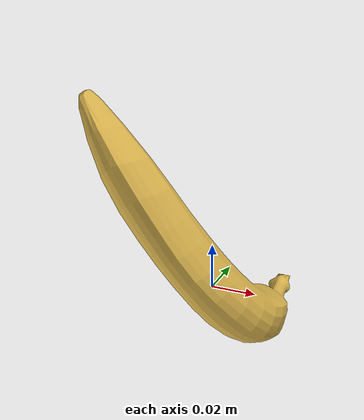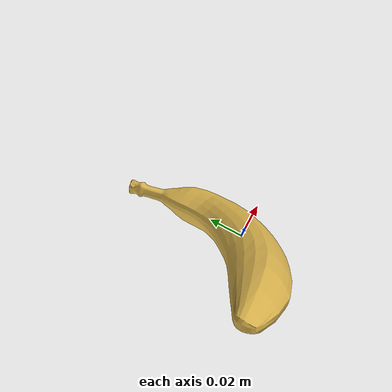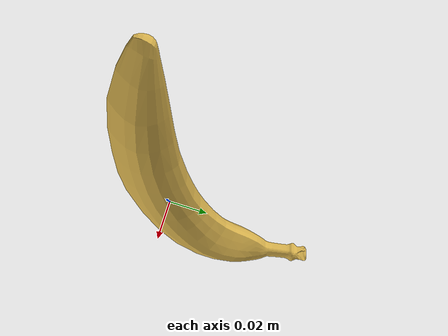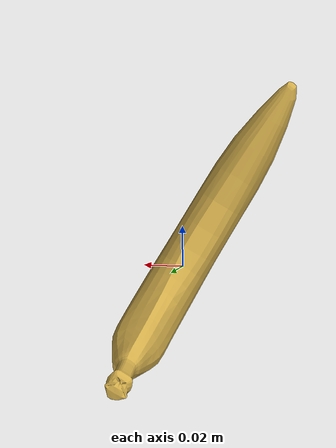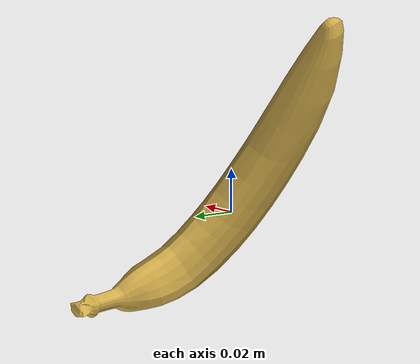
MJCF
<mujoco model="obj_banana">
    <asset>
        <!-- 视觉网格 -->
        <mesh file="../mesh/obj_banana/visual/banana.obj" name="banana_visual" scale="1.2 1.2 1.2" refquat="0.7071067811865472 0.0 0.0 0.7071067811865476" />

        <!-- 碰撞网格 -->
        <mesh file="../mesh/obj_banana/collision/obj_banana0.obj" name="banana_collision_0" scale="1.2 1.2 1.2" refquat="0.7071067811865472 0.0 0.0 0.7071067811865476" />
        <mesh file="../mesh/obj_banana/collision/obj_banana1.obj" name="banana_collision_1" scale="1.2 1.2 1.2" refquat="0.7071067811865472 0.0 0.0 0.7071067811865476" />
        <mesh file="../mesh/obj_banana/collision/obj_banana2.obj" name="banana_collision_2" scale="1.2 1.2 1.2" refquat="0.7071067811865472 0.0 0.0 0.7071067811865476" />

        <!-- 材质定义 -->
        <material name="banana_mat" rgba="0.85 0.7 0.3 1" specular="0.5" shininess="0.5" />
    </asset>

    <worldbody>
        <body name="banana_obj" pos="0 0 0" euler="0 0 0">
            <freejoint />
            <body name="object_banana" pos="0 0 0" euler="0 0 0">
                <!-- 视觉几何体 -->
                <geom solimp="0.998 0.998 0.001" solref="0.001 1" density="100" friction="0.95 0.3 0.1"
                      type="mesh" mesh="banana_visual" conaffinity="0" contype="0" group="2" material="banana_mat" />

                <!-- 碰撞几何体 -->
                <geom solimp="0.998 0.998 0.001" solref="0.001 1" density="100" friction="0.95 0.3 0.1"
                      type="mesh" mesh="banana_collision_0" group="3" rgba="0.8 0.8 0.8 0.0" />
                <geom solimp="0.998 0.998 0.001" solref="0.001 1" density="100" friction="0.95 0.3 0.1"
                      type="mesh" mesh="banana_collision_1" group="3" rgba="0.8 0.8 0.8 0.0" />
                <geom solimp="0.998 0.998 0.001" solref="0.001 1" density="100" friction="0.95 0.3 0.1"
                      type="mesh" mesh="banana_collision_2" group="3" rgba="0.8 0.8 0.8 0.0" />
            </body>

            <!-- 定位点 -->
            <site rgba="0 0 0 0" size="0.005" pos="0 0 -0.05" name="bottom_site_banana" />
            <site rgba="0 0 0 0" size="0.005" pos="0 0 0.05" name="top_site_banana" />
            <site rgba="0 0 0 0" size="0.005" pos="0.04 0 0" name="horizontal_radius_site_banana" />
        </body>
    </worldbody>
</mujoco>
